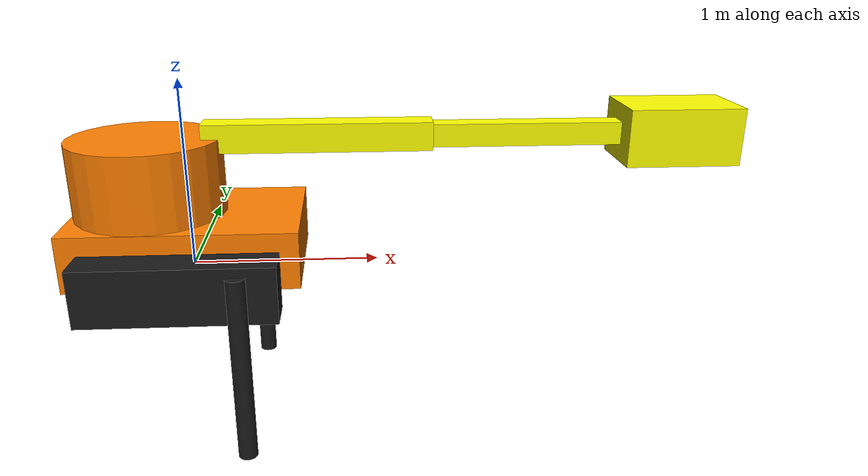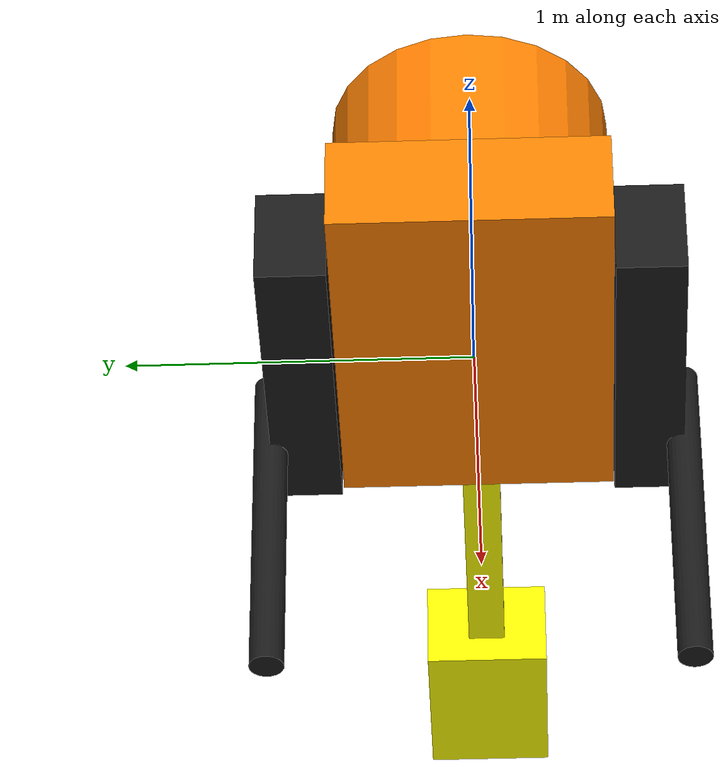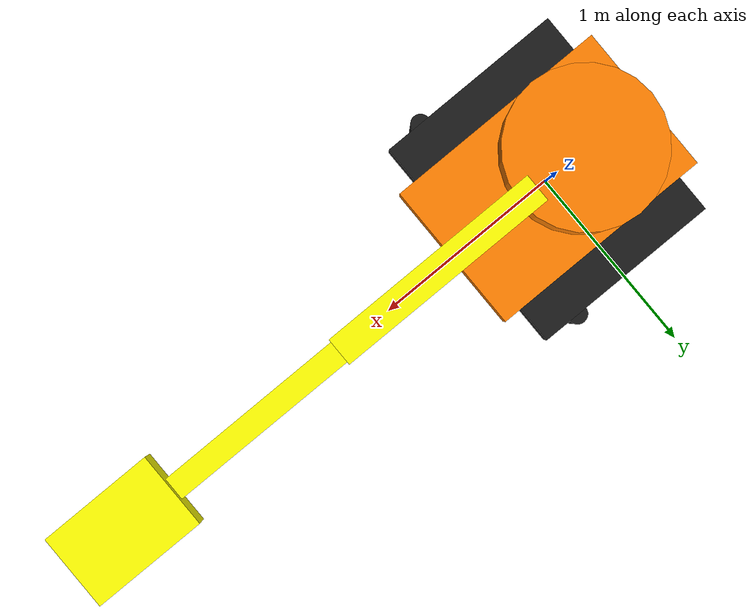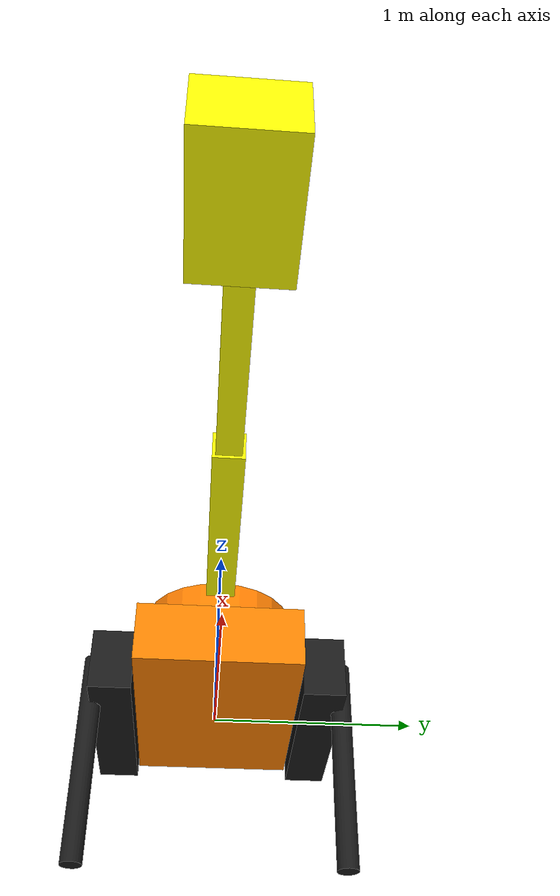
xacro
<?xml version="1.0"?>
<robot xmlns:xacro="http://www.ros.org/wiki/xacro" name="demolition_robot">

  <!-- Properties -->
  <xacro:property name="PI" value="3.14159265359"/>

  <!-- Colors -->
  <material name="orange">
    <color rgba="1.0 0.5 0.0 1.0"/>
  </material>

  <material name="black">
    <color rgba="0.1 0.1 0.1 1.0"/>
  </material>

  <material name="yellow">
    <color rgba="1.0 1.0 0.0 1.0"/>
  </material>

  <!-- Base Link (Robot chassis) -->
  <link name="base_link">
    <visual>
      <origin xyz="0 0 0.15" rpy="0 0 0"/>
      <geometry>
        <box size="1.2 0.8 0.3"/>
      </geometry>
      <material name="orange"/>
    </visual>
    <collision>
      <origin xyz="0 0 0.15" rpy="0 0 0"/>
      <geometry>
        <box size="1.2 0.8 0.3"/>
      </geometry>
    </collision>
    <inertial>
      <mass value="500.0"/>
      <inertia ixx="100.0" ixy="0.0" ixz="0.0" iyy="100.0" iyz="0.0" izz="100.0"/>
    </inertial>
  </link>

  <!-- Track Left -->
  <link name="track_left_link">
    <visual>
      <origin xyz="0 0 0" rpy="0 0 0"/>
      <geometry>
        <box size="1.0 0.2 0.3"/>
      </geometry>
      <material name="black"/>
    </visual>
    <collision>
      <origin xyz="0 0 0" rpy="0 0 0"/>
      <geometry>
        <box size="1.0 0.2 0.3"/>
      </geometry>
    </collision>
    <inertial>
      <mass value="50.0"/>
      <inertia ixx="10.0" ixy="0.0" ixz="0.0" iyy="10.0" iyz="0.0" izz="10.0"/>
    </inertial>
  </link>

  <joint name="track_left_joint" type="continuous">
    <parent link="base_link"/>
    <child link="track_left_link"/>
    <origin xyz="0 0.5 0.05" rpy="0 0 0"/>
    <axis xyz="1 0 0"/>
  </joint>

  <!-- Track Right -->
  <link name="track_right_link">
    <visual>
      <origin xyz="0 0 0" rpy="0 0 0"/>
      <geometry>
        <box size="1.0 0.2 0.3"/>
      </geometry>
      <material name="black"/>
    </visual>
    <collision>
      <origin xyz="0 0 0" rpy="0 0 0"/>
      <geometry>
        <box size="1.0 0.2 0.3"/>
      </geometry>
    </collision>
    <inertial>
      <mass value="50.0"/>
      <inertia ixx="10.0" ixy="0.0" ixz="0.0" iyy="10.0" iyz="0.0" izz="10.0"/>
    </inertial>
  </link>

  <joint name="track_right_joint" type="continuous">
    <parent link="base_link"/>
    <child link="track_right_link"/>
    <origin xyz="0 -0.5 0.05" rpy="0 0 0"/>
    <axis xyz="1 0 0"/>
  </joint>

  <!-- Slew (rotation platform) -->
  <link name="slew_link">
    <visual>
      <origin xyz="0 0 0.2" rpy="0 0 0"/>
      <geometry>
        <cylinder radius="0.4" length="0.4"/>
      </geometry>
      <material name="orange"/>
    </visual>
    <collision>
      <origin xyz="0 0 0.2" rpy="0 0 0"/>
      <geometry>
        <cylinder radius="0.4" length="0.4"/>
      </geometry>
    </collision>
    <inertial>
      <mass value="100.0"/>
      <inertia ixx="20.0" ixy="0.0" ixz="0.0" iyy="20.0" iyz="0.0" izz="20.0"/>
    </inertial>
  </link>

  <joint name="slew_joint" type="continuous">
    <parent link="base_link"/>
    <child link="slew_link"/>
    <origin xyz="-0.2 0 0.3" rpy="0 0 0"/>
    <axis xyz="0 0 1"/>
  </joint>

  <!-- Boom (Cylinder 1) -->
  <link name="boom_link">
    <visual>
      <origin xyz="0.6 0 0" rpy="0 0 0"/>
      <geometry>
        <box size="1.2 0.15 0.15"/>
      </geometry>
      <material name="yellow"/>
    </visual>
    <collision>
      <origin xyz="0.6 0 0" rpy="0 0 0"/>
      <geometry>
        <box size="1.2 0.15 0.15"/>
      </geometry>
    </collision>
    <inertial>
      <mass value="80.0"/>
      <inertia ixx="10.0" ixy="0.0" ixz="0.0" iyy="10.0" iyz="0.0" izz="10.0"/>
    </inertial>
  </link>

  <joint name="boom_joint" type="revolute">
    <parent link="slew_link"/>
    <child link="boom_link"/>
    <origin xyz="0.3 0 0.4" rpy="0 0 0"/>
    <axis xyz="0 1 0"/>
    <limit lower="-1.57" upper="1.57" effort="1000.0" velocity="0.5"/>
  </joint>

  <!-- Stick (Cylinder 2) -->
  <link name="stick_link">
    <visual>
      <origin xyz="0.5 0 0" rpy="0 0 0"/>
      <geometry>
        <box size="1.0 0.12 0.12"/>
      </geometry>
      <material name="yellow"/>
    </visual>
    <collision>
      <origin xyz="0.5 0 0" rpy="0 0 0"/>
      <geometry>
        <box size="1.0 0.12 0.12"/>
      </geometry>
    </collision>
    <inertial>
      <mass value="60.0"/>
      <inertia ixx="8.0" ixy="0.0" ixz="0.0" iyy="8.0" iyz="0.0" izz="8.0"/>
    </inertial>
  </link>

  <joint name="stick_joint" type="revolute">
    <parent link="boom_link"/>
    <child link="stick_link"/>
    <origin xyz="1.2 0 0" rpy="0 0 0"/>
    <axis xyz="0 1 0"/>
    <limit lower="-2.0" upper="2.0" effort="800.0" velocity="0.5"/>
  </joint>

  <!-- Bucket (Cylinder 3) -->
  <link name="bucket_link">
    <visual>
      <origin xyz="0.3 0 0" rpy="0 0 0"/>
      <geometry>
        <box size="0.6 0.4 0.3"/>
      </geometry>
      <material name="yellow"/>
    </visual>
    <collision>
      <origin xyz="0.3 0 0" rpy="0 0 0"/>
      <geometry>
        <box size="0.6 0.4 0.3"/>
      </geometry>
    </collision>
    <inertial>
      <mass value="40.0"/>
      <inertia ixx="5.0" ixy="0.0" ixz="0.0" iyy="5.0" iyz="0.0" izz="5.0"/>
    </inertial>
  </link>

  <joint name="bucket_joint" type="revolute">
    <parent link="stick_link"/>
    <child link="bucket_link"/>
    <origin xyz="1.0 0 0" rpy="0 0 0"/>
    <axis xyz="0 1 0"/>
    <limit lower="-2.5" upper="1.0" effort="600.0" velocity="0.5"/>
  </joint>

  <!-- Outrigger Left -->
  <link name="outrigger_left_link">
    <visual>
      <origin xyz="0 0 -0.5" rpy="0 0 0"/>
      <geometry>
        <cylinder radius="0.05" length="1.0"/>
      </geometry>
      <material name="black"/>
    </visual>
    <collision>
      <origin xyz="0 0 -0.5" rpy="0 0 0"/>
      <geometry>
        <cylinder radius="0.05" length="1.0"/>
      </geometry>
    </collision>
    <inertial>
      <mass value="20.0"/>
      <inertia ixx="2.0" ixy="0.0" ixz="0.0" iyy="2.0" iyz="0.0" izz="2.0"/>
    </inertial>
  </link>

  <joint name="outrigger_left_joint" type="prismatic">
    <parent link="base_link"/>
    <child link="outrigger_left_link"/>
    <origin xyz="0.3 0.6 0.15" rpy="0 0 0"/>
    <axis xyz="0 0 1"/>
    <limit lower="-0.8" upper="0.0" effort="500.0" velocity="0.3"/>
  </joint>

  <!-- Outrigger Right -->
  <link name="outrigger_right_link">
    <visual>
      <origin xyz="0 0 -0.5" rpy="0 0 0"/>
      <geometry>
        <cylinder radius="0.05" length="1.0"/>
      </geometry>
      <material name="black"/>
    </visual>
    <collision>
      <origin xyz="0 0 -0.5" rpy="0 0 0"/>
      <geometry>
        <cylinder radius="0.05" length="1.0"/>
      </geometry>
    </collision>
    <inertial>
      <mass value="20.0"/>
      <inertia ixx="2.0" ixy="0.0" ixz="0.0" iyy="2.0" iyz="0.0" izz="2.0"/>
    </inertial>
  </link>

  <joint name="outrigger_right_joint" type="prismatic">
    <parent link="base_link"/>
    <child link="outrigger_right_link"/>
    <origin xyz="0.3 -0.6 0.15" rpy="0 0 0"/>
    <axis xyz="0 0 1"/>
    <limit lower="-0.8" upper="0.0" effort="500.0" velocity="0.3"/>
  </joint>

</robot>
